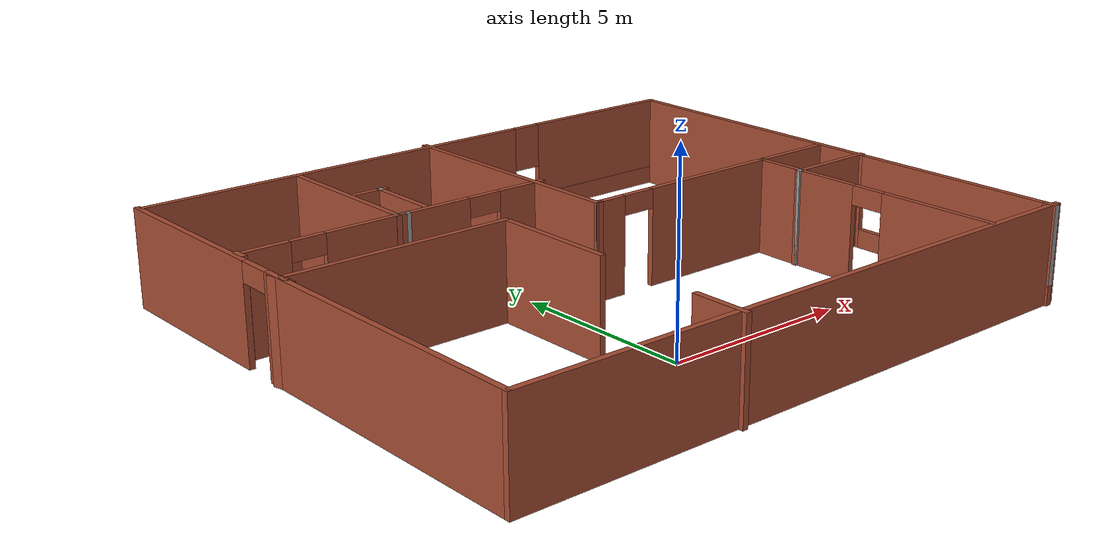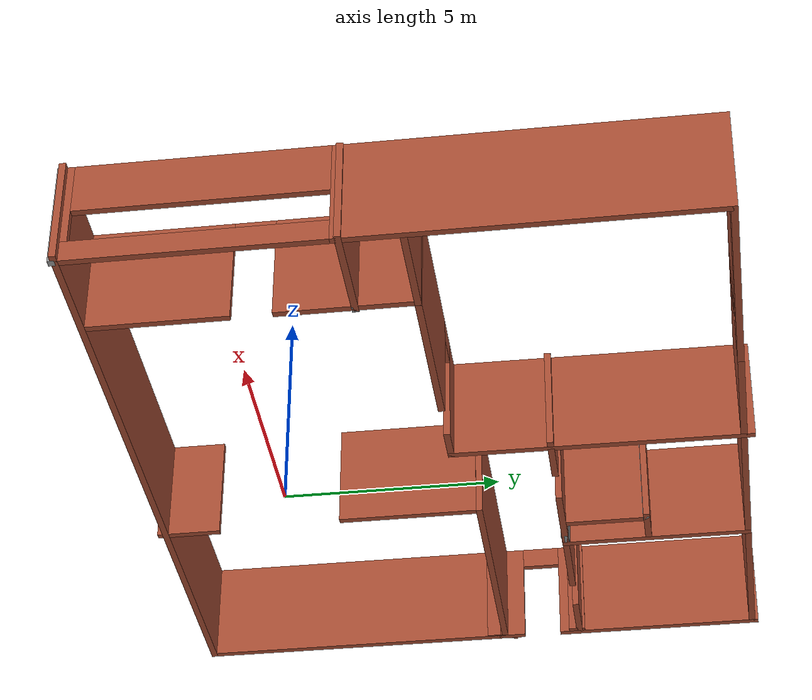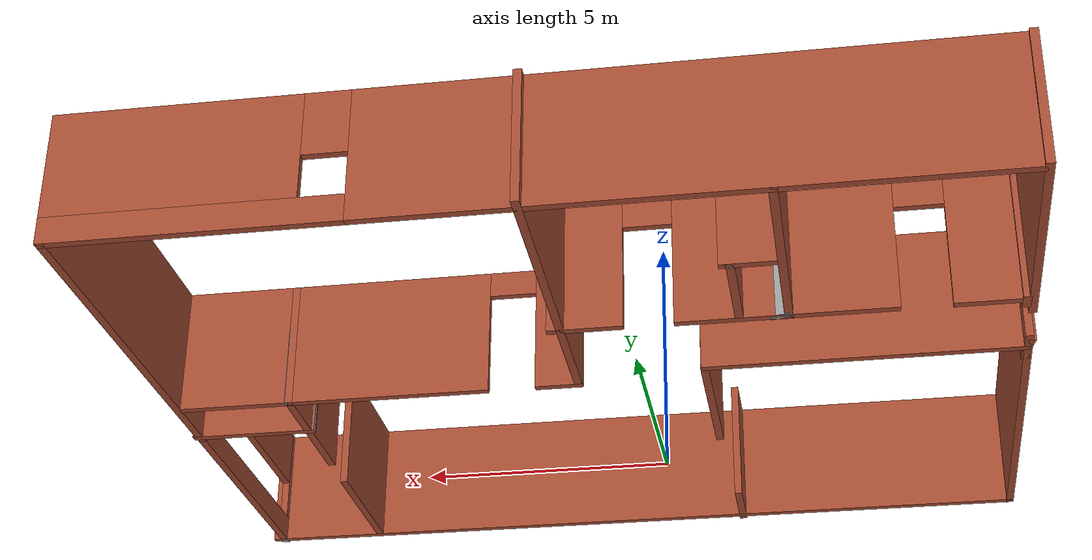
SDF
<?xml version='1.0'?>
<sdf version='1.7'>
  <model name='construction_patch_1'>
    <pose>1.05748 3.79628 0 0 -0 0</pose>
    <link name='Wall_11'>
      <pose>5.8121 -3.30857 0 0 -0 1.5708</pose>
      <visual name='Wall_11_Visual_0'>
        <pose>-2.02338 0 1.25 0 -0 0</pose>
        <geometry>
          <box>
            <size>3.20325 0.15 2.5</size>
          </box>
        </geometry>
        <material>
          <script>
            <uri>file://media/materials/scripts/gazebo.material</uri>
            <name>Gazebo/Bricks</name>
          </script>
          <ambient>1 1 1 1</ambient>
        </material>
        <meta>
          <layer>0</layer>
        </meta>
      </visual>
      <collision name='Wall_11_Collision_0'>
        <geometry>
          <box>
            <size>3.20325 0.15 2.5</size>
          </box>
        </geometry>
        <pose>-2.02338 0 1.25 0 -0 0</pose>
      </collision>
      <visual name='Wall_11_Visual_1'>
        <pose>2.05163 0 1.25 0 -0 0</pose>
        <geometry>
          <box>
            <size>3.14675 0.15 2.5</size>
          </box>
        </geometry>
        <material>
          <script>
            <uri>file://media/materials/scripts/gazebo.material</uri>
            <name>Gazebo/Bricks</name>
          </script>
          <ambient>1 1 1 1</ambient>
        </material>
        <meta>
          <layer>0</layer>
        </meta>
      </visual>
      <collision name='Wall_11_Collision_1'>
        <geometry>
          <box>
            <size>3.14675 0.15 2.5</size>
          </box>
        </geometry>
        <pose>2.05163 0 1.25 0 -0 0</pose>
      </collision>
      <visual name='Wall_11_Visual_2'>
        <pose>0.028249 0 2.25 0 -0 0</pose>
        <geometry>
          <box>
            <size>0.9 0.15 0.5</size>
          </box>
        </geometry>
        <material>
          <script>
            <uri>file://media/materials/scripts/gazebo.material</uri>
            <name>Gazebo/Bricks</name>
          </script>
          <ambient>1 1 1 1</ambient>
        </material>
        <meta>
          <layer>0</layer>
        </meta>
      </visual>
      <collision name='Wall_11_Collision_2'>
        <geometry>
          <box>
            <size>0.9 0.15 0.5</size>
          </box>
        </geometry>
        <pose>0.028249 0 2.25 0 -0 0</pose>
      </collision>
    </link>
    <link name='Wall_12'>
      <collision name='Wall_12_Collision'>
        <geometry>
          <box>
            <size>0.16 0.15 2.5</size>
          </box>
        </geometry>
        <pose>0 0 1.25 0 -0 0</pose>
      </collision>
      <visual name='Wall_12_Visual'>
        <pose>0 0 1.25 0 -0 0</pose>
        <geometry>
          <box>
            <size>0.16 0.15 2.5</size>
          </box>
        </geometry>
        <material>
          <script>
            <uri>file://media/materials/scripts/gazebo.material</uri>
            <name>Gazebo/Grey</name>
          </script>
          <ambient>1 1 1 1</ambient>
        </material>
        <meta>
          <layer>0</layer>
        </meta>
      </visual>
      <pose>5.8171 0.24143 0 0 -0 0</pose>
    </link>
    <link name='Wall_13'>
      <collision name='Wall_13_Collision'>
        <geometry>
          <box>
            <size>2.25 0.15 2.5</size>
          </box>
        </geometry>
        <pose>0 0 1.25 0 -0 0</pose>
      </collision>
      <visual name='Wall_13_Visual'>
        <pose>0 0 1.25 0 -0 0</pose>
        <geometry>
          <box>
            <size>2.25 0.15 2.5</size>
          </box>
        </geometry>
        <material>
          <script>
            <uri>file://media/materials/scripts/gazebo.material</uri>
            <name>Gazebo/Bricks</name>
          </script>
          <ambient>1 1 1 1</ambient>
        </material>
        <meta>
          <layer>0</layer>
        </meta>
      </visual>
      <pose>6.8721 0.241431 0 0 -0 0</pose>
    </link>
    <link name='Wall_15'>
      <collision name='Wall_15_Collision'>
        <geometry>
          <box>
            <size>2.5 0.15 2.5</size>
          </box>
        </geometry>
        <pose>0 0 1.25 0 -0 0</pose>
      </collision>
      <visual name='Wall_15_Visual'>
        <pose>0 0 1.25 0 -0 0</pose>
        <geometry>
          <box>
            <size>2.5 0.15 2.5</size>
          </box>
        </geometry>
        <material>
          <script>
            <uri>file://media/materials/scripts/gazebo.material</uri>
            <name>Gazebo/Bricks</name>
          </script>
          <ambient>1 1 1 1</ambient>
        </material>
        <meta>
          <layer>0</layer>
        </meta>
      </visual>
      <pose>6.93228 -1.08586 0 0 -0 3.14159</pose>
    </link>
    <link name='Wall_16'>
      <collision name='Wall_16_Collision'>
        <geometry>
          <box>
            <size>0.16 0.15 2.5</size>
          </box>
        </geometry>
        <pose>0 0 1.25 0 -0 0</pose>
      </collision>
      <visual name='Wall_16_Visual'>
        <pose>0 0 1.25 0 -0 0</pose>
        <geometry>
          <box>
            <size>0.16 0.15 2.5</size>
          </box>
        </geometry>
        <material>
          <script>
            <uri>file://media/materials/scripts/gazebo.material</uri>
            <name>Gazebo/Grey</name>
          </script>
          <ambient>1 1 1 1</ambient>
        </material>
        <meta>
          <layer>0</layer>
        </meta>
      </visual>
      <pose>5.76228 -1.08586 0 0 -0 0</pose>
    </link>
    <link name='Wall_18'>
      <pose>2.99108 0.241431 0 0 -0 0</pose>
      <visual name='Wall_18_Visual_0'>
        <pose>-2.45082 0 1.25 0 -0 0</pose>
        <geometry>
          <box>
            <size>0.910401 0.15 2.5</size>
          </box>
        </geometry>
        <material>
          <script>
            <uri>file://media/materials/scripts/gazebo.material</uri>
            <name>Gazebo/Bricks</name>
          </script>
          <ambient>1 1 1 1</ambient>
        </material>
        <meta>
          <layer>0</layer>
        </meta>
      </visual>
      <collision name='Wall_18_Collision_0'>
        <geometry>
          <box>
            <size>0.910401 0.15 2.5</size>
          </box>
        </geometry>
        <pose>-2.45082 0 1.25 0 -0 0</pose>
      </collision>
      <visual name='Wall_18_Visual_1'>
        <pose>0.9052 0 1.25 0 -0 0</pose>
        <geometry>
          <box>
            <size>4.00163 0.15 2.5</size>
          </box>
        </geometry>
        <material>
          <script>
            <uri>file://media/materials/scripts/gazebo.material</uri>
            <name>Gazebo/Bricks</name>
          </script>
          <ambient>1 1 1 1</ambient>
        </material>
        <meta>
          <layer>0</layer>
        </meta>
      </visual>
      <collision name='Wall_18_Collision_1'>
        <geometry>
          <box>
            <size>4.00163 0.15 2.5</size>
          </box>
        </geometry>
        <pose>0.9052 0 1.25 0 -0 0</pose>
      </collision>
      <visual name='Wall_18_Visual_2'>
        <pose>-1.54561 0 2.25 0 -0 0</pose>
        <geometry>
          <box>
            <size>0.9 0.15 0.5</size>
          </box>
        </geometry>
        <material>
          <script>
            <uri>file://media/materials/scripts/gazebo.material</uri>
            <name>Gazebo/Bricks</name>
          </script>
          <ambient>1 1 1 1</ambient>
        </material>
        <meta>
          <layer>0</layer>
        </meta>
      </visual>
      <collision name='Wall_18_Collision_2'>
        <geometry>
          <box>
            <size>0.9 0.15 0.5</size>
          </box>
        </geometry>
        <pose>-1.54561 0 2.25 0 -0 0</pose>
      </collision>
    </link>
    <link name='Wall_2'>
      <collision name='Wall_2_Collision'>
        <geometry>
          <box>
            <size>16.5 0.15 2.5</size>
          </box>
        </geometry>
        <pose>0 0 1.25 0 -0 0</pose>
      </collision>
      <visual name='Wall_2_Visual'>
        <pose>0 0 1.25 0 -0 0</pose>
        <geometry>
          <box>
            <size>16.5 0.15 2.5</size>
          </box>
        </geometry>
        <material>
          <script>
            <uri>file://media/materials/scripts/gazebo.material</uri>
            <name>Gazebo/Bricks</name>
          </script>
          <ambient>1 1 1 1</ambient>
        </material>
        <meta>
          <layer>0</layer>
        </meta>
      </visual>
      <pose>0.029954 -6.92628 0 0 -0 3.14159</pose>
    </link>
    <link name='Wall_20'>
      <collision name='Wall_20_Collision'>
        <geometry>
          <box>
            <size>6.94911 0.15 2.5</size>
          </box>
        </geometry>
        <pose>0 0 1.25 0 -0 0</pose>
      </collision>
      <visual name='Wall_20_Visual'>
        <pose>0 0 1.25 0 -0 0</pose>
        <geometry>
          <box>
            <size>6.94911 0.15 2.5</size>
          </box>
        </geometry>
        <material>
          <script>
            <uri>file://media/materials/scripts/gazebo.material</uri>
            <name>Gazebo/Bricks</name>
          </script>
          <ambient>1 1 1 1</ambient>
        </material>
        <meta>
          <layer>0</layer>
        </meta>
      </visual>
      <pose>0.132617 3.64087 0 0 -0 -1.56272</pose>
    </link>
    <link name='Wall_21'>
      <collision name='Wall_21_Collision'>
        <geometry>
          <box>
            <size>0.222032 0.15 2.5</size>
          </box>
        </geometry>
        <pose>0 0 1.25 0 -0 0</pose>
      </collision>
      <visual name='Wall_21_Visual'>
        <pose>0 0 1.25 0 -0 0</pose>
        <geometry>
          <box>
            <size>0.222032 0.15 2.5</size>
          </box>
        </geometry>
        <material>
          <script>
            <uri>file://media/materials/scripts/gazebo.material</uri>
            <name>Gazebo/Bricks</name>
          </script>
          <ambient>1 1 1 1</ambient>
        </material>
        <meta>
          <layer>0</layer>
        </meta>
      </visual>
      <pose>0.196084 0.241431 0 0 -0 0</pose>
    </link>
    <link name='Wall_24'>
      <collision name='Wall_24_Collision'>
        <geometry>
          <box>
            <size>0.468414 0.15 2.5</size>
          </box>
        </geometry>
        <pose>0 0 1.25 0 -0 0</pose>
      </collision>
      <visual name='Wall_24_Visual'>
        <pose>0 0 1.25 0 -0 0</pose>
        <geometry>
          <box>
            <size>0.468414 0.15 2.5</size>
          </box>
        </geometry>
        <material>
          <script>
            <uri>file://media/materials/scripts/gazebo.material</uri>
            <name>Gazebo/Bricks</name>
          </script>
          <ambient>1 1 1 1</ambient>
        </material>
        <meta>
          <layer>0</layer>
        </meta>
      </visual>
      <pose>-8.15392 0.70667 0 0 -0 -1.3426</pose>
    </link>
    <link name='Wall_26'>
      <pose>-3.85565 2.51199 0 0 -0 3.14159</pose>
      <visual name='Wall_26_Visual_0'>
        <pose>-3.55262 0 1.25 0 -0 0</pose>
        <geometry>
          <box>
            <size>1.39475 0.15 2.5</size>
          </box>
        </geometry>
        <material>
          <script>
            <uri>file://media/materials/scripts/gazebo.material</uri>
            <name>Gazebo/Bricks</name>
          </script>
          <ambient>1 1 1 1</ambient>
        </material>
        <meta>
          <layer>0</layer>
        </meta>
      </visual>
      <collision name='Wall_26_Collision_0'>
        <geometry>
          <box>
            <size>1.39475 0.15 2.5</size>
          </box>
        </geometry>
        <pose>-3.55262 0 1.25 0 -0 0</pose>
      </collision>
      <visual name='Wall_26_Visual_1'>
        <pose>0.031777 0 1.25 0 -0 0</pose>
        <geometry>
          <box>
            <size>3.97404 0.15 2.5</size>
          </box>
        </geometry>
        <material>
          <script>
            <uri>file://media/materials/scripts/gazebo.material</uri>
            <name>Gazebo/Bricks</name>
          </script>
          <ambient>1 1 1 1</ambient>
        </material>
        <meta>
          <layer>0</layer>
        </meta>
      </visual>
      <collision name='Wall_26_Collision_1'>
        <geometry>
          <box>
            <size>3.97404 0.15 2.5</size>
          </box>
        </geometry>
        <pose>0.031777 0 1.25 0 -0 0</pose>
      </collision>
      <visual name='Wall_26_Visual_2'>
        <pose>3.5844 0 1.25 0 -0 0</pose>
        <geometry>
          <box>
            <size>1.3312 0.15 2.5</size>
          </box>
        </geometry>
        <material>
          <script>
            <uri>file://media/materials/scripts/gazebo.material</uri>
            <name>Gazebo/Bricks</name>
          </script>
          <ambient>1 1 1 1</ambient>
        </material>
        <meta>
          <layer>0</layer>
        </meta>
      </visual>
      <collision name='Wall_26_Collision_2'>
        <geometry>
          <box>
            <size>1.3312 0.15 2.5</size>
          </box>
        </geometry>
        <pose>3.5844 0 1.25 0 -0 0</pose>
      </collision>
      <visual name='Wall_26_Visual_3'>
        <pose>-2.40524 0 2.25 0 -0 0</pose>
        <geometry>
          <box>
            <size>0.9 0.15 0.5</size>
          </box>
        </geometry>
        <material>
          <script>
            <uri>file://media/materials/scripts/gazebo.material</uri>
            <name>Gazebo/Bricks</name>
          </script>
          <ambient>1 1 1 1</ambient>
        </material>
        <meta>
          <layer>0</layer>
        </meta>
      </visual>
      <collision name='Wall_26_Collision_3'>
        <geometry>
          <box>
            <size>0.9 0.15 0.5</size>
          </box>
        </geometry>
        <pose>-2.40524 0 2.25 0 -0 0</pose>
      </collision>
      <visual name='Wall_26_Visual_4'>
        <pose>2.4688 0 2.25 0 -0 0</pose>
        <geometry>
          <box>
            <size>0.9 0.15 0.5</size>
          </box>
        </geometry>
        <material>
          <script>
            <uri>file://media/materials/scripts/gazebo.material</uri>
            <name>Gazebo/Bricks</name>
          </script>
          <ambient>1 1 1 1</ambient>
        </material>
        <meta>
          <layer>0</layer>
        </meta>
      </visual>
      <collision name='Wall_26_Collision_4'>
        <geometry>
          <box>
            <size>0.9 0.15 0.5</size>
          </box>
        </geometry>
        <pose>2.4688 0 2.25 0 -0 0</pose>
      </collision>
    </link>
    <link name='Wall_27'>
      <collision name='Wall_27_Collision'>
        <geometry>
          <box>
            <size>0.398329 0.15 2.5</size>
          </box>
        </geometry>
        <pose>0 0 1.25 0 -0 0</pose>
      </collision>
      <visual name='Wall_27_Visual'>
        <pose>0 0 1.25 0 -0 0</pose>
        <geometry>
          <box>
            <size>0.398329 0.15 2.5</size>
          </box>
        </geometry>
        <material>
          <script>
            <uri>file://media/materials/scripts/gazebo.material</uri>
            <name>Gazebo/Bricks</name>
          </script>
          <ambient>1 1 1 1</ambient>
        </material>
        <meta>
          <layer>0</layer>
        </meta>
      </visual>
      <pose>-8.02565 2.44996 0 0 -0 -1.53052</pose>
    </link>
    <link name='Wall_30'>
      <collision name='Wall_30_Collision'>
        <geometry>
          <box>
            <size>4.5 0.15 2.5</size>
          </box>
        </geometry>
        <pose>0 0 1.25 0 -0 0</pose>
      </collision>
      <visual name='Wall_30_Visual'>
        <pose>0 0 1.25 0 -0 0</pose>
        <geometry>
          <box>
            <size>4.5 0.15 2.5</size>
          </box>
        </geometry>
        <material>
          <script>
            <uri>file://media/materials/scripts/gazebo.material</uri>
            <name>Gazebo/Bricks</name>
          </script>
          <ambient>1 1 1 1</ambient>
        </material>
        <meta>
          <layer>0</layer>
        </meta>
      </visual>
      <pose>-3.92691 4.67922 0 0 -0 -1.5708</pose>
    </link>
    <link name='Wall_31'>
      <collision name='Wall_31_Collision'>
        <geometry>
          <box>
            <size>0.415477 0.15 2.5</size>
          </box>
        </geometry>
        <pose>0 0 1.25 0 -0 0</pose>
      </collision>
      <visual name='Wall_31_Visual'>
        <pose>0 0 1.25 0 -0 0</pose>
        <geometry>
          <box>
            <size>0.415477 0.15 2.5</size>
          </box>
        </geometry>
        <material>
          <script>
            <uri>file://media/materials/scripts/gazebo.material</uri>
            <name>Gazebo/Grey</name>
          </script>
          <ambient>1 1 1 1</ambient>
        </material>
        <meta>
          <layer>0</layer>
        </meta>
      </visual>
      <pose>-3.79784 2.53524 0 0 -0 -0.235843</pose>
    </link>
    <link name='Wall_33'>
      <collision name='Wall_33_Collision'>
        <geometry>
          <box>
            <size>1 0.15 2.5</size>
          </box>
        </geometry>
        <pose>0 0 1.25 0 -0 0</pose>
      </collision>
      <visual name='Wall_33_Visual'>
        <pose>0 0 1.25 0 -0 0</pose>
        <geometry>
          <box>
            <size>1 0.15 2.5</size>
          </box>
        </geometry>
        <material>
          <script>
            <uri>file://media/materials/scripts/gazebo.material</uri>
            <name>Gazebo/Bricks</name>
          </script>
          <ambient>1 1 1 1</ambient>
        </material>
        <meta>
          <layer>0</layer>
        </meta>
      </visual>
      <pose>-3.3594 4.49701 0 0 -0 3.14159</pose>
    </link>
    <link name='Wall_36'>
      <collision name='Wall_36_Collision'>
        <geometry>
          <box>
            <size>2 0.15 2.5</size>
          </box>
        </geometry>
        <pose>0 0 1.25 0 -0 0</pose>
      </collision>
      <visual name='Wall_36_Visual'>
        <pose>0 0 1.25 0 -0 0</pose>
        <geometry>
          <box>
            <size>2 0.15 2.5</size>
          </box>
        </geometry>
        <material>
          <script>
            <uri>file://media/materials/scripts/gazebo.material</uri>
            <name>Gazebo/Bricks</name>
          </script>
          <ambient>1 1 1 1</ambient>
        </material>
        <meta>
          <layer>0</layer>
        </meta>
      </visual>
      <pose>-3.05846 3.56105 0 0 -0 1.5708</pose>
    </link>
    <link name='Wall_37'>
      <collision name='Wall_37_Collision'>
        <geometry>
          <box>
            <size>0.16 0.15 2.5</size>
          </box>
        </geometry>
        <pose>0 0 1.25 0 -0 0</pose>
      </collision>
      <visual name='Wall_37_Visual'>
        <pose>0 0 1.25 0 -0 0</pose>
        <geometry>
          <box>
            <size>0.16 0.15 2.5</size>
          </box>
        </geometry>
        <material>
          <script>
            <uri>file://media/materials/scripts/gazebo.material</uri>
            <name>Gazebo/Grey</name>
          </script>
          <ambient>1 1 1 1</ambient>
        </material>
        <meta>
          <layer>0</layer>
        </meta>
      </visual>
      <pose>-3.05346 4.48605 0 0 -0 0</pose>
    </link>
    <link name='Wall_4'>
      <pose>-8.14505 0.016207 0 0 -0 1.5708</pose>
      <visual name='Wall_4_Visual_0'>
        <pose>-2.94724 0 1.25 0 -0 0</pose>
        <geometry>
          <box>
            <size>8.10552 0.15 2.5</size>
          </box>
        </geometry>
        <material>
          <script>
            <uri>file://media/materials/scripts/gazebo.material</uri>
            <name>Gazebo/Bricks</name>
          </script>
          <ambient>1 1 1 1</ambient>
        </material>
        <meta>
          <layer>0</layer>
        </meta>
      </visual>
      <collision name='Wall_4_Collision_0'>
        <geometry>
          <box>
            <size>8.10552 0.15 2.5</size>
          </box>
        </geometry>
        <pose>-2.94724 0 1.25 0 -0 0</pose>
      </collision>
      <visual name='Wall_4_Visual_1'>
        <pose>4.50276 0 1.25 0 -0 0</pose>
        <geometry>
          <box>
            <size>4.99448 0.15 2.5</size>
          </box>
        </geometry>
        <material>
          <script>
            <uri>file://media/materials/scripts/gazebo.material</uri>
            <name>Gazebo/Bricks</name>
          </script>
          <ambient>1 1 1 1</ambient>
        </material>
        <meta>
          <layer>0</layer>
        </meta>
      </visual>
      <collision name='Wall_4_Collision_1'>
        <geometry>
          <box>
            <size>4.99448 0.15 2.5</size>
          </box>
        </geometry>
        <pose>4.50276 0 1.25 0 -0 0</pose>
      </collision>
      <visual name='Wall_4_Visual_2'>
        <pose>1.55552 0 2.25 0 -0 0</pose>
        <geometry>
          <box>
            <size>0.9 0.15 0.5</size>
          </box>
        </geometry>
        <material>
          <script>
            <uri>file://media/materials/scripts/gazebo.material</uri>
            <name>Gazebo/Bricks</name>
          </script>
          <ambient>1 1 1 1</ambient>
        </material>
        <meta>
          <layer>0</layer>
        </meta>
      </visual>
      <collision name='Wall_4_Collision_2'>
        <geometry>
          <box>
            <size>0.9 0.15 0.5</size>
          </box>
        </geometry>
        <pose>1.55552 0 2.25 0 -0 0</pose>
      </collision>
    </link>
    <link name='Wall_45'>
      <collision name='Wall_45_Collision'>
        <geometry>
          <box>
            <size>6 0.15 2.5</size>
          </box>
        </geometry>
        <pose>0 0 1.25 0 -0 0</pose>
      </collision>
      <visual name='Wall_45_Visual'>
        <pose>0 0 1.25 0 -0 0</pose>
        <geometry>
          <box>
            <size>6 0.15 2.5</size>
          </box>
        </geometry>
        <material>
          <script>
            <uri>file://media/materials/scripts/gazebo.material</uri>
            <name>Gazebo/Bricks</name>
          </script>
          <ambient>1 1 1 1</ambient>
        </material>
        <meta>
          <layer>0</layer>
        </meta>
      </visual>
      <pose>-5.1929 0.613622 0 0 -0 3.14159</pose>
    </link>
    <link name='Wall_46'>
      <collision name='Wall_46_Collision'>
        <geometry>
          <box>
            <size>0.460321 0.15 2.5</size>
          </box>
        </geometry>
        <pose>0 0 1.25 0 -0 0</pose>
      </collision>
      <visual name='Wall_46_Visual'>
        <pose>0 0 1.25 0 -0 0</pose>
        <geometry>
          <box>
            <size>0.460321 0.15 2.5</size>
          </box>
        </geometry>
        <material>
          <script>
            <uri>file://media/materials/scripts/gazebo.material</uri>
            <name>Gazebo/Bricks</name>
          </script>
          <ambient>1 1 1 1</ambient>
        </material>
        <meta>
          <layer>0</layer>
        </meta>
      </visual>
      <pose>-8.1129 0.39651 0 0 -0 -1.53857</pose>
    </link>
    <link name='Wall_48'>
      <collision name='Wall_48_Collision'>
        <geometry>
          <box>
            <size>3.25 0.15 2.5</size>
          </box>
        </geometry>
        <pose>0 0 1.25 0 -0 0</pose>
      </collision>
      <visual name='Wall_48_Visual'>
        <pose>0 0 1.25 0 -0 0</pose>
        <geometry>
          <box>
            <size>3.25 0.15 2.5</size>
          </box>
        </geometry>
        <material>
          <script>
            <uri>file://media/materials/scripts/gazebo.material</uri>
            <name>Gazebo/Bricks</name>
          </script>
          <ambient>1 1 1 1</ambient>
        </material>
        <meta>
          <layer>0</layer>
        </meta>
      </visual>
      <pose>-2.25205 -1.08506 0 0 -0 -1.5708</pose>
    </link>
    <link name='Wall_50'>
      <collision name='Wall_50_Collision'>
        <geometry>
          <box>
            <size>1.5 0.15 2.5</size>
          </box>
        </geometry>
        <pose>0 0 1.25 0 -0 0</pose>
      </collision>
      <visual name='Wall_50_Visual'>
        <pose>0 0 1.25 0 -0 0</pose>
        <geometry>
          <box>
            <size>1.5 0.15 2.5</size>
          </box>
        </geometry>
        <material>
          <script>
            <uri>file://media/materials/scripts/gazebo.material</uri>
            <name>Gazebo/Bricks</name>
          </script>
          <ambient>1 1 1 1</ambient>
        </material>
        <meta>
          <layer>0</layer>
        </meta>
      </visual>
      <pose>-2.37611 -6.36592 0 0 -0 1.5708</pose>
    </link>
    <link name='Wall_6'>
      <pose>0.002867 6.85883 0 0 -0 0</pose>
      <visual name='Wall_6_Visual_0'>
        <pose>-2.60324 0 1.25 0 -0 0</pose>
        <geometry>
          <box>
            <size>11.0435 0.15 2.5</size>
          </box>
        </geometry>
        <material>
          <script>
            <uri>file://media/materials/scripts/gazebo.material</uri>
            <name>Gazebo/Bricks</name>
          </script>
          <ambient>1 1 1 1</ambient>
        </material>
        <meta>
          <layer>0</layer>
        </meta>
      </visual>
      <collision name='Wall_6_Collision_0'>
        <geometry>
          <box>
            <size>11.0435 0.15 2.5</size>
          </box>
        </geometry>
        <pose>-2.60324 0 1.25 0 -0 0</pose>
      </collision>
      <visual name='Wall_6_Visual_1'>
        <pose>5.52176 0 0.25 0 -0 0</pose>
        <geometry>
          <box>
            <size>5.20648 0.15 0.5</size>
          </box>
        </geometry>
        <material>
          <script>
            <uri>file://media/materials/scripts/gazebo.material</uri>
            <name>Gazebo/Bricks</name>
          </script>
          <ambient>1 1 1 1</ambient>
        </material>
        <meta>
          <layer>0</layer>
        </meta>
      </visual>
      <collision name='Wall_6_Collision_1'>
        <geometry>
          <box>
            <size>5.20648 0.15 0.5</size>
          </box>
        </geometry>
        <pose>5.52176 0 0.25 0 -0 0</pose>
      </collision>
      <visual name='Wall_6_Visual_2'>
        <pose>5.92176 0 1.5 0 -0 0</pose>
        <geometry>
          <box>
            <size>4.40648 0.15 2</size>
          </box>
        </geometry>
        <material>
          <script>
            <uri>file://media/materials/scripts/gazebo.material</uri>
            <name>Gazebo/Bricks</name>
          </script>
          <ambient>1 1 1 1</ambient>
        </material>
        <meta>
          <layer>0</layer>
        </meta>
      </visual>
      <collision name='Wall_6_Collision_2'>
        <geometry>
          <box>
            <size>4.40648 0.15 2</size>
          </box>
        </geometry>
        <pose>5.92176 0 1.5 0 -0 0</pose>
      </collision>
      <visual name='Wall_6_Visual_3'>
        <pose>3.31852 0 1.9 0 -0 0</pose>
        <geometry>
          <box>
            <size>0.8 0.15 1.2</size>
          </box>
        </geometry>
        <material>
          <script>
            <uri>file://media/materials/scripts/gazebo.material</uri>
            <name>Gazebo/Bricks</name>
          </script>
          <ambient>1 1 1 1</ambient>
        </material>
        <meta>
          <layer>0</layer>
        </meta>
      </visual>
      <collision name='Wall_6_Collision_3'>
        <geometry>
          <box>
            <size>0.8 0.15 1.2</size>
          </box>
        </geometry>
        <pose>3.31852 0 1.9 0 -0 0</pose>
      </collision>
    </link>
    <link name='Wall_8'>
      <pose>8.05287 -0.066171 0 0 -0 -1.5708</pose>
      <visual name='Wall_8_Visual_0'>
        <pose>-2.90523 0 1.25 0 -0 0</pose>
        <geometry>
          <box>
            <size>8.18953 0.15 2.5</size>
          </box>
        </geometry>
        <material>
          <script>
            <uri>file://media/materials/scripts/gazebo.material</uri>
            <name>Gazebo/Bricks</name>
          </script>
          <ambient>1 1 1 1</ambient>
        </material>
        <meta>
          <layer>0</layer>
        </meta>
      </visual>
      <collision name='Wall_8_Collision_0'>
        <geometry>
          <box>
            <size>8.18953 0.15 2.5</size>
          </box>
        </geometry>
        <pose>-2.90523 0 1.25 0 -0 0</pose>
      </collision>
      <visual name='Wall_8_Visual_1'>
        <pose>4.09477 0 0.25 0 -0 0</pose>
        <geometry>
          <box>
            <size>5.81047 0.15 0.5</size>
          </box>
        </geometry>
        <material>
          <script>
            <uri>file://media/materials/scripts/gazebo.material</uri>
            <name>Gazebo/Bricks</name>
          </script>
          <ambient>1 1 1 1</ambient>
        </material>
        <meta>
          <layer>0</layer>
        </meta>
      </visual>
      <collision name='Wall_8_Collision_1'>
        <geometry>
          <box>
            <size>5.81047 0.15 0.5</size>
          </box>
        </geometry>
        <pose>4.09477 0 0.25 0 -0 0</pose>
      </collision>
      <visual name='Wall_8_Visual_2'>
        <pose>6.81511 0 1.5 0 -0 0</pose>
        <geometry>
          <box>
            <size>0.369772 0.15 2</size>
          </box>
        </geometry>
        <material>
          <script>
            <uri>file://media/materials/scripts/gazebo.material</uri>
            <name>Gazebo/Bricks</name>
          </script>
          <ambient>1 1 1 1</ambient>
        </material>
        <meta>
          <layer>0</layer>
        </meta>
      </visual>
      <collision name='Wall_8_Collision_2'>
        <geometry>
          <box>
            <size>0.369772 0.15 2</size>
          </box>
        </geometry>
        <pose>6.81511 0 1.5 0 -0 0</pose>
      </collision>
      <visual name='Wall_8_Visual_3'>
        <pose>3.90988 0 1.9 0 -0 0</pose>
        <geometry>
          <box>
            <size>5.4407 0.15 1.2</size>
          </box>
        </geometry>
        <material>
          <script>
            <uri>file://media/materials/scripts/gazebo.material</uri>
            <name>Gazebo/Bricks</name>
          </script>
          <ambient>1 1 1 1</ambient>
        </material>
        <meta>
          <layer>0</layer>
        </meta>
      </visual>
      <collision name='Wall_8_Collision_3'>
        <geometry>
          <box>
            <size>5.4407 0.15 1.2</size>
          </box>
        </geometry>
        <pose>3.90988 0 1.9 0 -0 0</pose>
      </collision>
    </link>
    <link name='Wall_9'>
      <collision name='Wall_9_Collision'>
        <geometry>
          <box>
            <size>0.16 0.15 2.5</size>
          </box>
        </geometry>
        <pose>0 0 1.25 0 -0 0</pose>
      </collision>
      <visual name='Wall_9_Visual'>
        <pose>0 0 1.25 0 -0 0</pose>
        <geometry>
          <box>
            <size>0.16 0.15 2.5</size>
          </box>
        </geometry>
        <material>
          <script>
            <uri>file://media/materials/scripts/gazebo.material</uri>
            <name>Gazebo/Grey</name>
          </script>
          <ambient>1 1 1 1</ambient>
        </material>
        <meta>
          <layer>0</layer>
        </meta>
      </visual>
      <pose>8.05787 -6.99117 0 0 -0 0</pose>
    </link>
    <static>1</static>
  </model>
</sdf>
